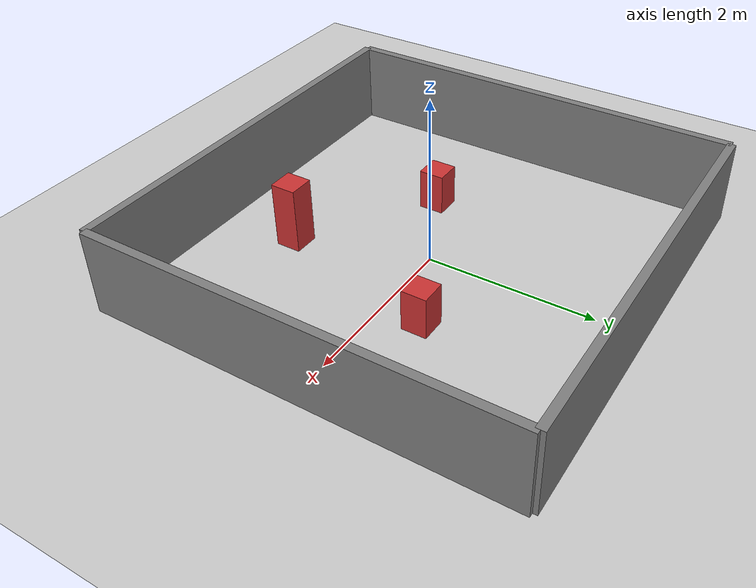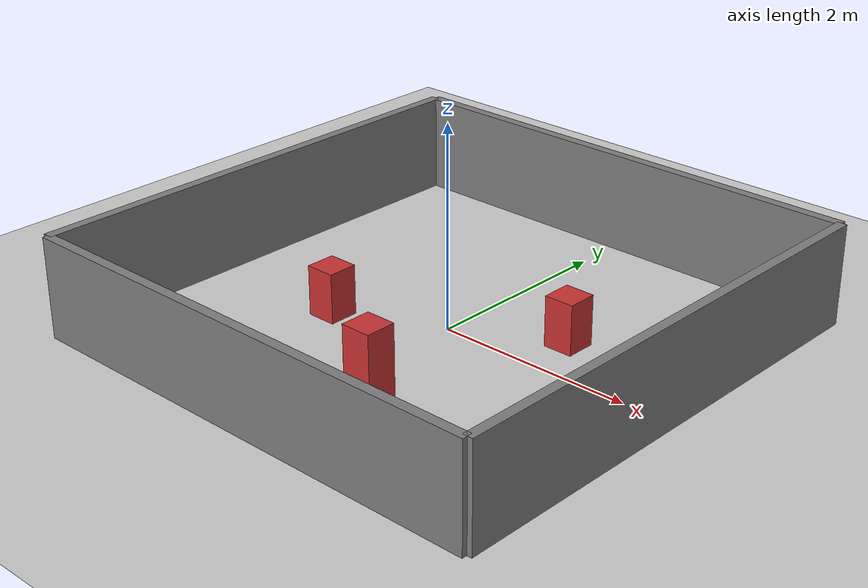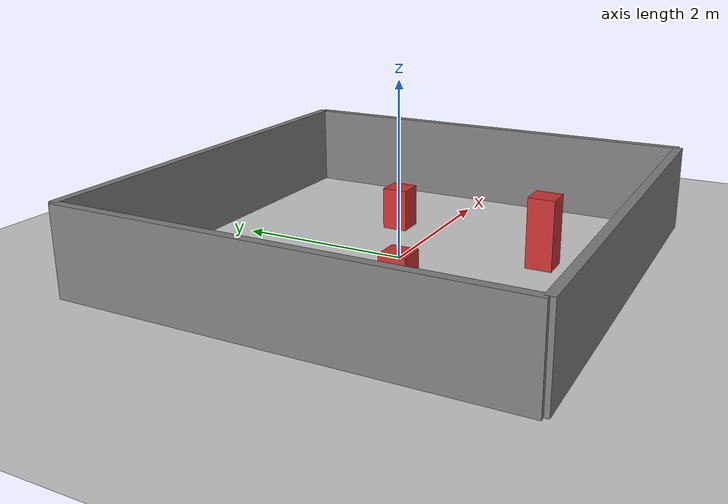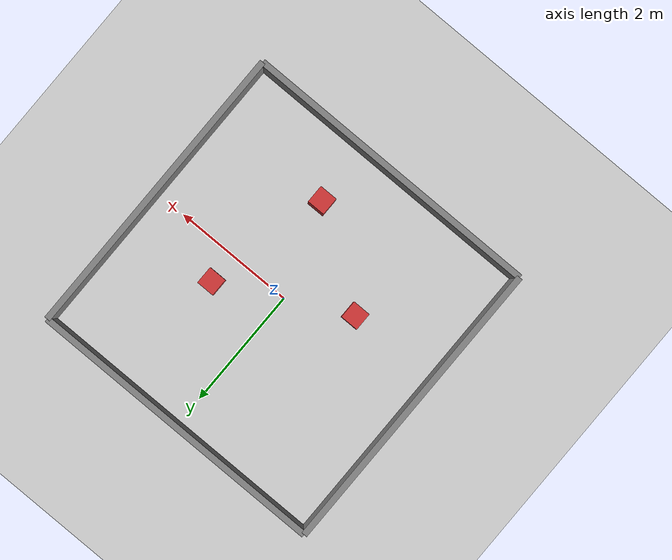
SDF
<?xml version="1.0"?>
<sdf version="1.8">
  <world name="simple_room">

    <!-- 물리 엔진 -->
    <physics name="default_physics" type="ode">
      <max_step_size>0.001</max_step_size>
      <real_time_factor>1.0</real_time_factor>
    </physics>

    <!-- 시스템 플러그인 -->
    <plugin filename="libignition-gazebo-physics-system.so"
            name="ignition::gazebo::systems::Physics"/>
    <plugin filename="libignition-gazebo-sensors-system.so"
            name="ignition::gazebo::systems::Sensors">
      <render_engine>ogre2</render_engine>
    </plugin>
    <plugin filename="libignition-gazebo-scene-broadcaster-system.so"
            name="ignition::gazebo::systems::SceneBroadcaster"/>
    <!-- UserCommands: /world/simple_room/set_pose 서비스 제공
         obstacle_controller_node.py가 이 서비스로 pose 갱신 -->
    <plugin filename="libignition-gazebo-user-commands-system.so"
            name="ignition::gazebo::systems::UserCommands"/>
    <plugin filename="libignition-gazebo-imu-system.so"
            name="ignition::gazebo::systems::Imu"/>

    <!-- 조명 -->
    <light name="sun" type="directional">
      <cast_shadows>true</cast_shadows>
      <pose>0 0 10 0 0 0</pose>
      <diffuse>1 1 1 1</diffuse>
      <specular>0.5 0.5 0.5 1</specular>
      <direction>-0.5 0.1 -0.9</direction>
    </light>

    <!-- 바닥 -->
    <model name="ground_plane">
      <static>true</static>
      <link name="link">
        <collision name="collision">
          <geometry><plane><normal>0 0 1</normal></plane></geometry>
        </collision>
        <visual name="visual">
          <geometry><plane>
            <normal>0 0 1</normal>
            <size>20 20</size>
          </plane></geometry>
          <material>
            <ambient>0.8 0.8 0.8 1</ambient>
            <diffuse>0.8 0.8 0.8 1</diffuse>
          </material>
        </visual>
      </link>
    </model>

    <model name="wall_north">
      <static>true</static>
      <pose>0 2.5 0.5 0 0 0</pose>
      <link name="link">
        <collision name="collision">
          <geometry><box><size>5 0.1 1.0</size></box></geometry>
        </collision>
        <visual name="visual">
          <geometry><box><size>5 0.1 1.0</size></box></geometry>
          <material><ambient>0.5 0.5 0.5 1</ambient></material>
        </visual>
      </link>
    </model>

    <model name="wall_south">
      <static>true</static>
      <pose>0 -2.5 0.5 0 0 0</pose>
      <link name="link">
        <collision name="collision">
          <geometry><box><size>5 0.1 1.0</size></box></geometry>
        </collision>
        <visual name="visual">
          <geometry><box><size>5 0.1 1.0</size></box></geometry>
          <material><ambient>0.5 0.5 0.5 1</ambient></material>
        </visual>
      </link>
    </model>

    <model name="wall_east">
      <static>true</static>
      <pose>2.5 0 0.5 0 0 0</pose>
      <link name="link">
        <collision name="collision">
          <geometry><box><size>0.1 5 1.0</size></box></geometry>
        </collision>
        <visual name="visual">
          <geometry><box><size>0.1 5 1.0</size></box></geometry>
          <material><ambient>0.5 0.5 0.5 1</ambient></material>
        </visual>
      </link>
    </model>

    <model name="wall_west">
      <static>true</static>
      <pose>-2.5 0 0.5 0 0 0</pose>
      <link name="link">
        <collision name="collision">
          <geometry><box><size>0.1 5 1.0</size></box></geometry>
        </collision>
        <visual name="visual">
          <geometry><box><size>0.1 5 1.0</size></box></geometry>
          <material><ambient>0.5 0.5 0.5 1</ambient></material>
        </visual>
      </link>
    </model>

    <!-- 정적 장애물 2개 (W8 MPC Soft Penalty 호환) -->
    <model name="obstacle_1">
      <static>true</static>
      <pose>1.0 0.5 0.25 0 0 0</pose>
      <link name="link">
        <collision name="collision">
          <geometry><box><size>0.3 0.3 0.5</size></box></geometry>
        </collision>
        <visual name="visual">
          <geometry><box><size>0.3 0.3 0.5</size></box></geometry>
          <material><ambient>0.8 0.2 0.2 1</ambient></material>
        </visual>
      </link>
    </model>

    <model name="obstacle_2">
      <static>true</static>
      <pose>-1.0 -0.5 0.25 0 0 0</pose>
      <link name="link">
        <collision name="collision">
          <geometry><box><size>0.3 0.3 0.5</size></box></geometry>
        </collision>
        <visual name="visual">
          <geometry><box><size>0.3 0.3 0.5</size></box></geometry>
          <material><ambient>0.8 0.2 0.2 1</ambient></material>
        </visual>
      </link>
    </model>

    <model name="dyn_obs_1">
      <static>true</static>
      <pose>0.5 -1.5 0.4 0 0 0</pose>
      <link name="link">
        <collision name="collision">
          <geometry><box><size>0.3 0.3 0.8</size></box></geometry>
        </collision>
        <visual name="visual">
          <geometry><box><size>0.3 0.3 0.8</size></box></geometry>
          <material>
            <ambient>0.8 0.2 0.2 1</ambient>
            <diffuse>0.8 0.2 0.2 1</diffuse>
            <specular>0.1 0.1 0.1 1</specular>
            <emissive>0.3 0.0 0.0 1</emissive>
          </material>
        </visual>
      </link>
    </model>

  </world>
</sdf>
